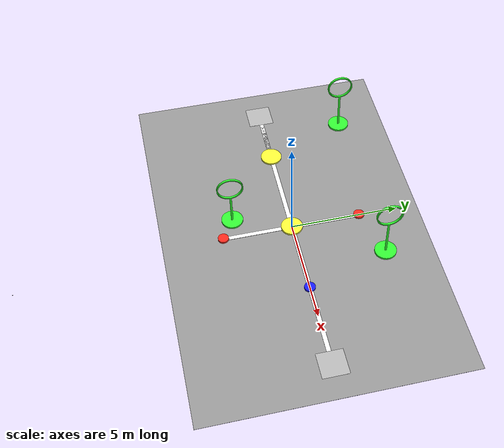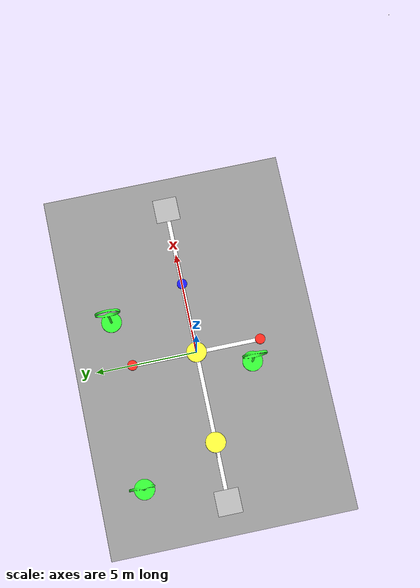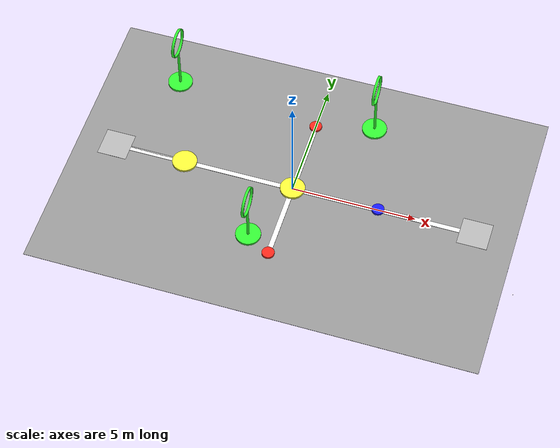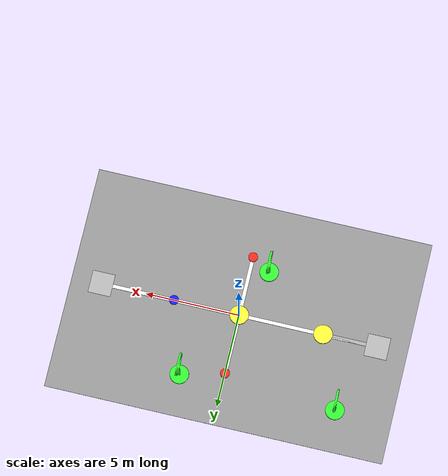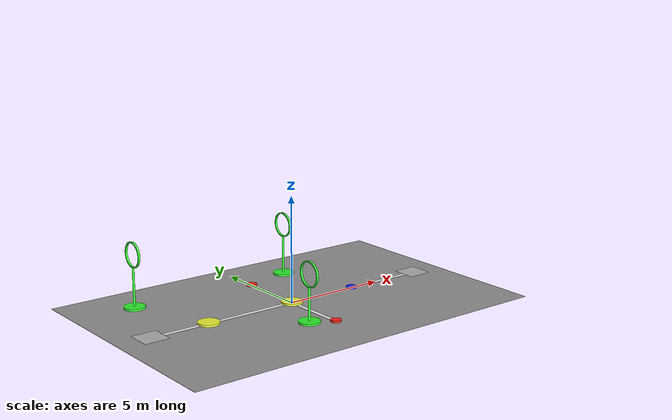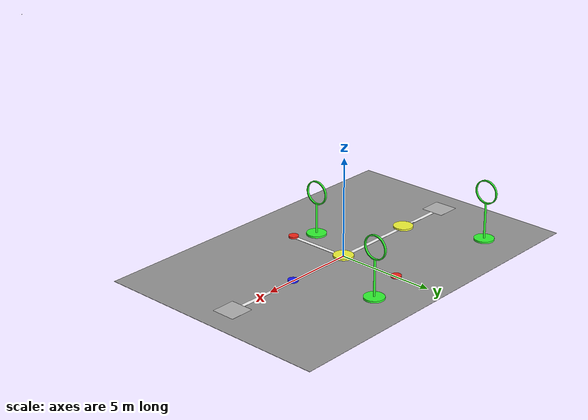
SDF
<?xml version="1.0" ?>
<sdf version="1.7">
  <world name="drone_delivery_field">

    <!-- Sunlight -->
    <include><uri>model://sun</uri></include>

    <!-- =========================
         MAIN FIELD & LINES
         ========================= -->

    <!-- Main field (18m x 12m), centered at origin -->
    <model name="main_field">
      <static>true</static>
      <pose>0 0 0.005 0 0 0</pose>
      <link name="link">
        <collision name="collision"><geometry><box><size>18 12 0.01</size></box></geometry></collision>
        <visual name="visual">
          <geometry><box><size>18 12 0.01</size></box></geometry>
          <material>
            <script>
              <uri>file://media/materials/scripts/gazebo.material</uri>
              <name>Gazebo/Gray</name>
            </script>
          </material>
        </visual>
      </link>
    </model>

    <!-- Center horizontal white line -->
    <model name="central_line">
      <static>true</static>
      <pose>0 0 0.01 0 0 0</pose>
      <link name="link">
        <collision name="collision"><geometry><box><size>14.5 0.2 0.02</size></box></geometry></collision>
        <visual name="visual">
          <geometry><box><size>14.5 0.2 0.02</size></box></geometry>
          <material><ambient>1 1 1 1</ambient><diffuse>1 1 1 1</diffuse></material>
        </visual>
      </link>
    </model>

    <!-- Center vertical white line -->
    <model name="center_line_T3_T4">
      <static>true</static>
      <pose>0 0 0.01 0 0 0</pose>
      <link name="link">
        <collision name="collision"><geometry><box><size>0.2 6.4 0.02</size></box></geometry></collision>
        <visual name="visual">
          <geometry><box><size>0.2 6.4 0.02</size></box></geometry>
          <material><ambient>1 1 1 1</ambient><diffuse>1 1 1 1</diffuse></material>
        </visual>
      </link>
    </model>

    <!-- =========================
         HOME LANDING PADS
         ========================= -->

    <!-- Home H2 pad (left side) -->
    <include>
      <uri>model://home_marker_H2</uri>
      <name>home_H2</name>
      <pose>-7.4 0 0.05 0 0 -1.57079633</pose>
    </include>

    <!-- Home H1 pad (right side) -->
    <include>
      <uri>model://home_marker_H1</uri>
      <name>home_H1</name>
      <pose>7.4 0 0.05 0 0 -1.57079633</pose>
    </include>

    <!-- Gray connection bar between H2 and T1 -->
    <model name="handoff_link">
      <static>true</static>
      <pose>-5.95 0 0.01 0 0 0</pose>
      <link name="link">
        <collision name="collision"><geometry><box><size>2.9 0.2 0.02</size></box></geometry></collision>
        <visual name="visual">
          <geometry><box><size>2.9 0.2 0.02</size></box></geometry>
          <material><ambient>0.7 0.7 0.7 1</ambient><diffuse>0.7 0.7 0.7 1</diffuse></material>
        </visual>
      </link>
    </model>

    <!-- =========================
         TARGETS (CONTACT AREAS)
         ========================= -->

    <!-- Target T1: Left side near H2 (large yellow) -->
    <model name="target_T1">
      <static>true</static>
      <pose>-4.5 0 0.05 0 0 0</pose>
      <link name="link">
        <visual name="visual"><geometry><cylinder><radius>0.5</radius><length>0.1</length></cylinder></geometry><material><ambient>0.98 1.0 0.22 1</ambient><diffuse>0.98 1.0 0.22 1</diffuse></material></visual>
        <collision name="collision"><geometry><cylinder><radius>0.5</radius><length>0.1</length></cylinder></geometry></collision>
        <sensor name="contact_sensor_T1" type="contact"><always_on>true</always_on><update_rate>100</update_rate>
          <contact><collision>collision</collision></contact>
          <plugin name="gazebo_ros_bumper_T1" filename="libgazebo_ros_bumper.so"><ros><namespace>/islab</namespace><remapping>bumper_states:=targets/T1/contacts</remapping></ros></plugin>
        </sensor>
      </link>
    </model>

    <!-- Target T2: Center (large yellow) -->
    <model name="target_T2">
      <static>true</static>
      <pose>0 0 0.05 0 0 0</pose>
      <link name="link">
        <visual name="visual"><geometry><cylinder><radius>0.5</radius><length>0.1</length></cylinder></geometry><material><ambient>0.98 1.0 0.22 1</ambient><diffuse>0.98 1.0 0.22 1</diffuse></material></visual>
        <collision name="collision"><geometry><cylinder><radius>0.5</radius><length>0.1</length></cylinder></geometry></collision>
        <sensor name="contact_sensor_T2" type="contact"><always_on>true</always_on><update_rate>100</update_rate>
          <contact><collision>collision</collision></contact>
          <plugin name="gazebo_ros_bumper_T2" filename="libgazebo_ros_bumper.so"><ros><namespace>/islab</namespace><remapping>bumper_states:=targets/T2/contacts</remapping></ros></plugin>
        </sensor>
      </link>
    </model>

    <!-- Target T3: Below center (small red) -->
    <model name="target_T3">
      <static>true</static>
      <pose>0 -3.2 0.05 0 0 0</pose>
      <link name="link">
        <visual name="visual"><geometry><cylinder><radius>0.25</radius><length>0.1</length></cylinder></geometry><material><ambient>0.99 0.16 0.11 1</ambient><diffuse>0.99 0.16 0.11 1</diffuse></material></visual>
        <collision name="collision"><geometry><cylinder><radius>0.25</radius><length>0.1</length></cylinder></geometry></collision>
        <sensor name="contact_sensor_T3" type="contact"><always_on>true</always_on><update_rate>100</update_rate>
          <contact><collision>collision</collision></contact>
          <plugin name="gazebo_ros_bumper_T3" filename="libgazebo_ros_bumper.so"><ros><namespace>/islab</namespace><remapping>bumper_states:=targets/T3/contacts</remapping></ros></plugin>
        </sensor>
      </link>
    </model>

    <!-- Target T4: Above center (small red) -->
    <model name="target_T4">
      <static>true</static>
      <pose>0 3.2 0.05 0 0 0</pose>
      <link name="link">
        <visual name="visual"><geometry><cylinder><radius>0.25</radius><length>0.1</length></cylinder></geometry><material><ambient>0.99 0.16 0.11 1</ambient><diffuse>0.99 0.16 0.11 1</diffuse></material></visual>
        <collision name="collision"><geometry><cylinder><radius>0.25</radius><length>0.1</length></cylinder></geometry></collision>
        <sensor name="contact_sensor_T4" type="contact"><always_on>true</always_on><update_rate>100</update_rate>
          <contact><collision>collision</collision></contact>
          <plugin name="gazebo_ros_bumper_T4" filename="libgazebo_ros_bumper.so"><ros><namespace>/islab</namespace><remapping>bumper_states:=targets/T4/contacts</remapping></ros></plugin>
        </sensor>
      </link>
    </model>

    <!-- Target T5: Right side near H1 (small blue) -->
    <model name="target_T5">
      <static>true</static>
      <pose>3.5 0 0.05 0 0 0</pose>
      <link name="link">
        <visual name="visual"><geometry><cylinder><radius>0.25</radius><length>0.1</length></cylinder></geometry><material><ambient>0.1 0.1 1 1</ambient><diffuse>0.1 0.1 1 1</diffuse></material></visual>
        <collision name="collision"><geometry><cylinder><radius>0.25</radius><length>0.1</length></cylinder></geometry></collision>
        <sensor name="contact_sensor_T5" type="contact"><always_on>true</always_on><update_rate>100</update_rate>
          <contact><collision>collision</collision></contact>
          <plugin name="gazebo_ros_bumper_T5" filename="libgazebo_ros_bumper.so"><ros><namespace>/islab</namespace><remapping>bumper_states:=targets/T5/contacts</remapping></ros></plugin>
        </sensor>
      </link>
    </model>

    <!-- =========================
         RINGS (OBSTACLES)
         ========================= -->

    <!-- Ring R3: top-left corner -->
    <include>
      <uri>model://ring_1_8</uri>
      <name>ring_R3</name>
      <pose>-6.5 3.2 0 1.57079633 0 1.5708</pose>
    </include>

    <!-- Ring R2: bottom-left -->
    <include>
      <uri>model://ring_1_5</uri>
      <name>ring_R2</name>
      <pose>-1.5 -3.2 0 1.57079633 0 1.5708</pose>
    </include>

    <!-- Ring R1: top-right -->
    <include>
      <uri>model://ring_1_8</uri>
      <name>ring_R1</name>
      <pose>1.8 3.2 0 1.57079633 0 1.5708</pose>
    </include>

    <!-- =========================
      THIRD-PERSON CAMERA (Top-Right View)
      ========================= -->
    <include>
      <static>true</static>
      <uri>model://overview_camera</uri>
      <name>overview_camera</name>
      <pose>10 -10 12 0 0.7 2.35619</pose>
    </include>

    <!-- =========================
         ROS 2 INTEGRATION
         ========================= -->
    <plugin name="gazebo_ros" filename="libgazebo_ros_init.so">
      <ros><namespace>/gazebo</namespace></ros>
    </plugin>

    <plugin name="factory" filename="libgazebo_ros_factory.so"/>
  </world>
</sdf>

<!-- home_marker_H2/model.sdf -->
<sdf version="1.6">
  <model name="home_marker_H2">
    <static>true</static>
    <link name="link">
      <pose>0 0 0 0 0 0</pose>

      <!-- Collision geometry -->
      <collision name="collision">
        <geometry>
          <plane>
            <normal>0 0 1</normal>
            <size>1.2 1.2</size>
          </plane>
        </geometry>
      </collision>

      <!-- Visual appearance -->
      <visual name="visual">
        <geometry>
          <plane>
            <normal>0 0 1</normal>
            <size>1.2 1.2</size>
          </plane>
        </geometry>
        <material>
          <script>
            <uri>model://home_marker_H2/materials/scripts</uri>
            <uri>model://home_marker_H2/materials/textures</uri>
            <name>home_marker_H2/material</name>
          </script>
        </material>
      </visual>

      <!-- Contact sensor publishing ROS2 ContactsState -->
      <sensor name="contact_sensor_H2" type="contact">
        <always_on>true</always_on>
        <update_rate>100</update_rate>
        <contact>
          <!-- Reference the collision by its name -->
          <collision>collision</collision>
        </contact>

        <!-- ROS bumper plugin inside the sensor -->
        <plugin name="gazebo_ros_bumper_home_H2" filename="libgazebo_ros_bumper.so">
          <ros>
            <namespace>/islab</namespace>
            <remapping>bumper_states:=home/H2/contacts</remapping>
          </ros>
        </plugin>
      </sensor>

    </link>
  </model>
</sdf>

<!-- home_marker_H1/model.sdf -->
<sdf version="1.6">
  <model name="home_marker_H1">
    <static>true</static>
    <link name="link">
      <pose>0 0 0 0 0 0</pose>

      <!-- Collision geometry -->
      <collision name="collision">
        <geometry>
          <plane>
            <normal>0 0 1</normal>
            <size>1.2 1.2</size>
          </plane>
        </geometry>
      </collision>

      <!-- Visual appearance -->
      <visual name="visual">
        <geometry>
          <plane>
            <normal>0 0 1</normal>
            <size>1.2 1.2</size>
          </plane>
        </geometry>
        <material>
          <script>
            <uri>model://home_marker_H1/materials/scripts</uri>
            <uri>model://home_marker_H1/materials/textures</uri>
            <name>home_marker_H1/material</name>
          </script>
        </material>
      </visual>

      <!-- Contact sensor publishing ROS2 ContactsState -->
      <sensor name="contact_sensor_H1" type="contact">
        <always_on>true</always_on>
        <update_rate>100</update_rate>
        <contact>
          <!-- Reference the collision by its name -->
          <collision>collision</collision>
        </contact>

        <!-- ROS bumper plugin inside the sensor -->
        <plugin name="gazebo_ros_bumper_home_H1" filename="libgazebo_ros_bumper.so">
          <ros>
            <namespace>/islab</namespace>
            <remapping>bumper_states:=home/H1/contacts</remapping>
          </ros>
        </plugin>
      </sensor>

    </link>
  </model>
</sdf>

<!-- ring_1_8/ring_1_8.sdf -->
<sdf version="1.6">
  <model name="ring_1_8">
    <static>true</static>
    <link name="ring_link">

      <!-- Visual mesh only (visible ring model) -->
      <visual name="visual">
        <pose>0 0 0 0 0 0</pose>
        <geometry>
          <mesh>
            <uri>model://ring_1_8/meshes/ring_1_8.STL</uri>
            <scale>0.001 0.001 0.001</scale>
          </mesh>
        </geometry>
        <material>
          <ambient>0.2 0.8 0.2 1</ambient>
          <diffuse>0.2 1.0 0.2 1</diffuse>
        </material>
      </visual>

      <!-- Virtual collision zone for detecting pass-through without physical blocking -->
      <collision name="collision">
        <pose>0 0 0 0 0 0</pose>
        <geometry>
          <cylinder>
            <radius>0.1</radius>     <!-- 20 cm wide -->
            <length>0.05</length>    <!-- 5 cm thick -->
          </cylinder>
        </geometry>
        <surface>
          <contact>
            <collide_bitmask>0</collide_bitmask> <!-- Disable physical collisions -->
          </contact>
          <bounce>
            <restitution_coefficient>0.0</restitution_coefficient> <!-- No bounce -->
          </bounce>
          <friction>
            <ode>
              <mu>0.0</mu>
              <mu2>0.0</mu2> <!-- No friction -->
            </ode>
          </friction>
        </surface>
      </collision>

      <!-- Contact sensor to detect when UAV passes through the virtual zone -->
      <sensor name="ring_contact_sensor" type="contact">
        <always_on>true</always_on>
        <update_rate>50</update_rate>
        <contact>
          <collision>collision</collision>
        </contact>
        <plugin name="gazebo_ros_contact" filename="libgazebo_ros_contact.so">
          <ros_topic>/ring_1_8/contact</ros_topic>
        </plugin>
      </sensor>

    </link>
  </model>
</sdf>

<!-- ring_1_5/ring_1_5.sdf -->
<sdf version="1.6">
  <model name="ring_1_5">
    <static>true</static>
    <link name="ring_link">

      <!-- Visible ring mesh -->
      <visual name="visual">
        <pose>0 0 0 0 0 0</pose>
        <geometry>
          <mesh>
            <uri>model://ring_1_5/meshes/ring_1_5.STL</uri>
            <scale>0.001 0.001 0.001</scale>
          </mesh>
        </geometry>
        <material>
          <ambient>0.2 0.8 0.2 1</ambient>
          <diffuse>0.2 1.0 0.2 1</diffuse>
        </material>
      </visual>

      <!-- Virtual collision zone (small cylinder in center, no physics) -->
      <collision name="collision">
        <pose>0 0 0 0 0 0</pose>
        <geometry>
          <cylinder>
            <radius>0.1</radius>     <!-- 20 cm wide -->
            <length>0.05</length>    <!-- 5 cm thick -->
          </cylinder>
        </geometry>
        <surface>
          <contact>
            <collide_bitmask>0</collide_bitmask> <!-- Disable physical collision -->
          </contact>
          <bounce>
            <restitution_coefficient>0.0</restitution_coefficient>
          </bounce>
          <friction>
            <ode>
              <mu>0.0</mu>
              <mu2>0.0</mu2>
            </ode>
          </friction>
        </surface>
      </collision>

      <!-- Contact sensor to detect when drone enters the virtual zone -->
      <sensor name="ring_contact_sensor" type="contact">
        <always_on>true</always_on>
        <update_rate>50</update_rate>
        <contact>
          <collision>collision</collision>
        </contact>
        <plugin name="gazebo_ros_contact" filename="libgazebo_ros_contact.so">
          <ros_topic>/ring_1_5/contact</ros_topic>
        </plugin>
      </sensor>

    </link>
  </model>
</sdf>

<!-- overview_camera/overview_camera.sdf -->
<sdf version="1.6">
  <model name="overview_camera">
    <link name="link">
      <pose>0 0 0 0 0 0</pose>
      <inertial>
        <pose>0 0 0 0 0 0</pose>
        <mass>0.01</mass>
        <inertia>
          <ixx>1e-05</ixx>
          <ixy>0</ixy>
          <ixz>0</ixz>
          <iyy>1e-05</iyy>
          <iyz>0</iyz>
          <izz>1e-05</izz>
        </inertia>
      </inertial>
      <visual name="visual">
        <geometry>
          <cylinder>
            <radius>0.01</radius>
            <length>0.002</length>
          </cylinder>
        </geometry>
        <material>
          <script>
            <name>Gazebo/DarkGrey</name>
            <uri>file://media/materials/scripts/gazebo.material</uri>
          </script>
        </material>
      </visual>
      <sensor name='overview_camera' type='camera'>
        <always_on>1</always_on>
        <visualize>1</visualize>
        <update_rate>120</update_rate>
        <camera>
          <horizontal_fov>1.047</horizontal_fov>
          <image>
            <width>1280</width>
            <height>720</height>
            <format>R8G8B8</format>
          </image>
          <clip>
            <near>0.1</near>
            <far>100</far>
          </clip>
          <noise>
            <type>gaussian</type>
            <mean>0</mean>
            <stddev>0.005</stddev>
          </noise>
        </camera>
        <plugin name='camera_overview' filename='libgazebo_ros_camera.so'>
          <ros>
            <namespace>/islab</namespace>
          </ros>
          <frame_name>/islab/overview_camera</frame_name>
          <camera_name>overview</camera_name>
          <hack_baseline>0.07</hack_baseline>
        </plugin>
      </sensor>
    </link>
  </model>
</sdf>
